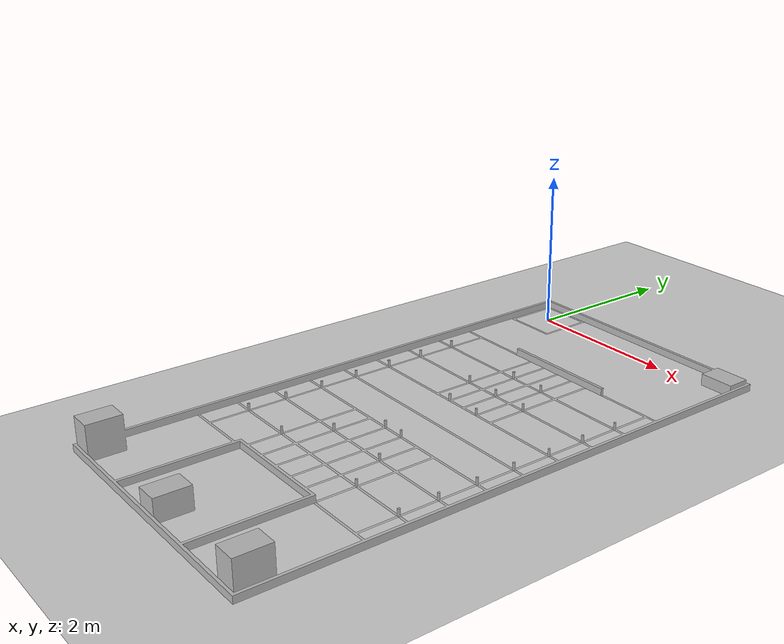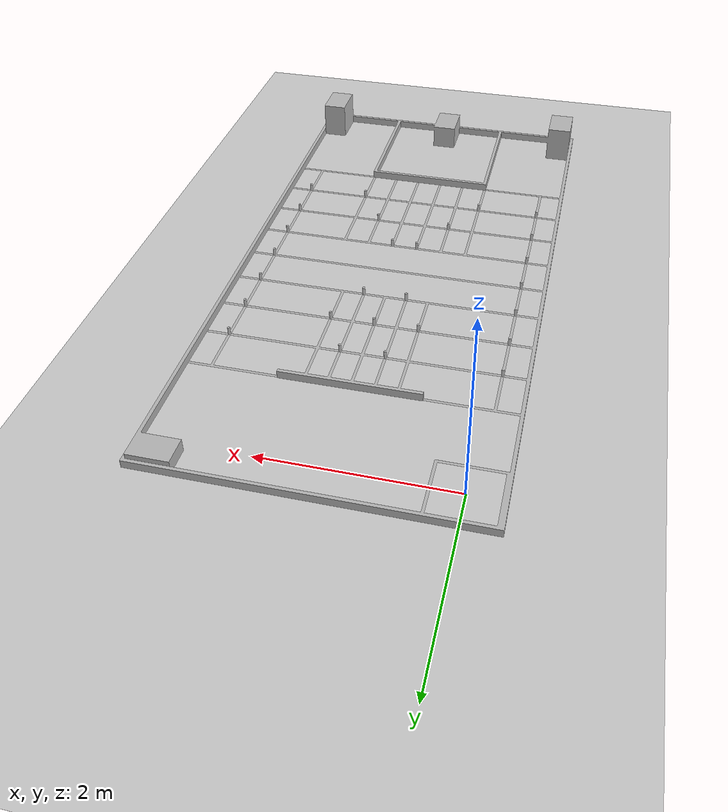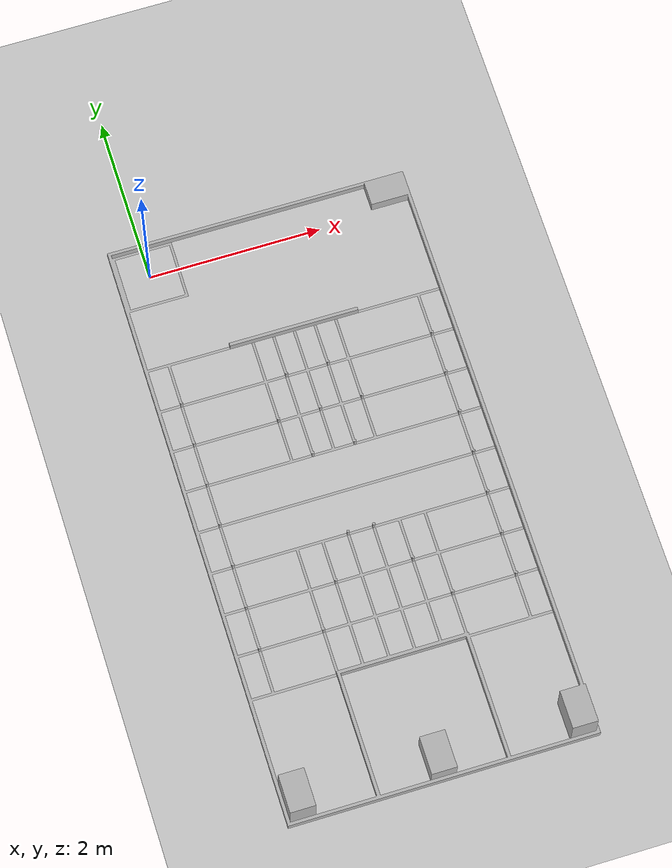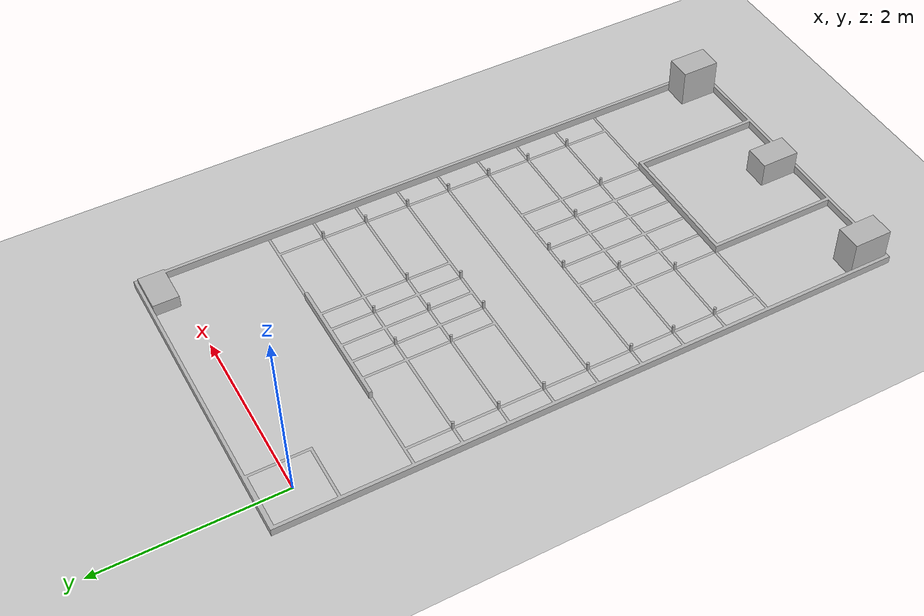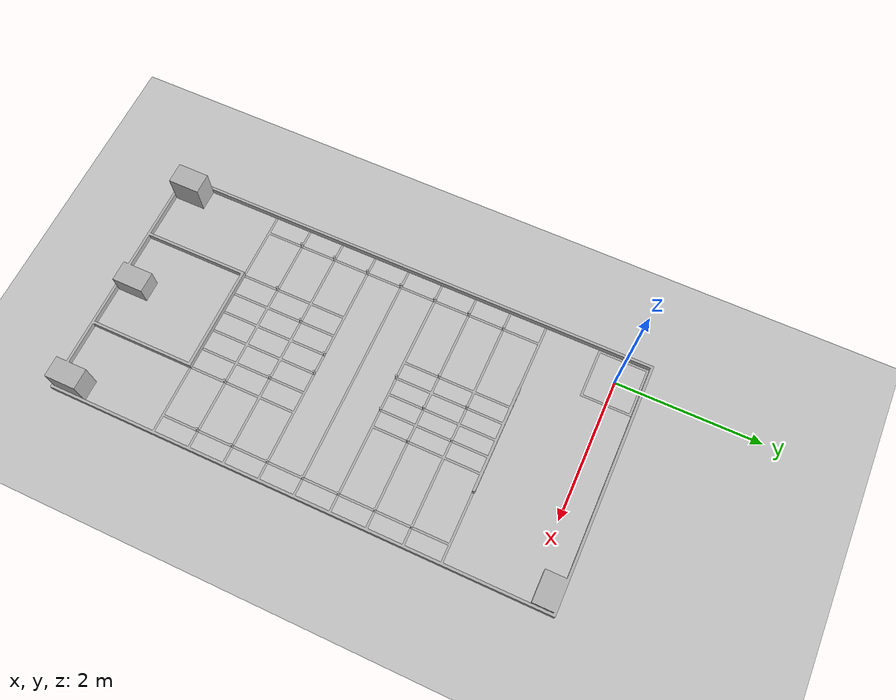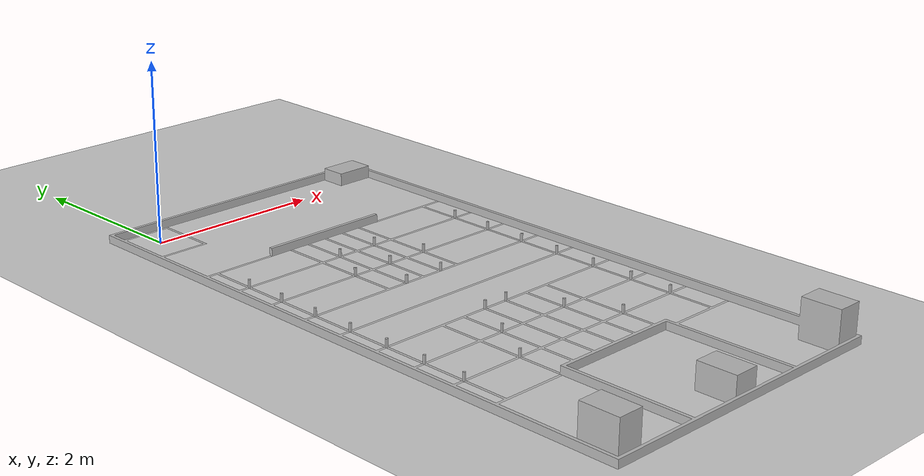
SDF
<?xml version="1.0"?>
<sdf version='1.6'>
  <world name="default">
    <include>
      <uri>model://ground_plane</uri>
    </include>
    <include>
      <uri>model://sun</uri>
    </include>
    <model name="my_mesh">
      <pose>0 0 0  0 0 0</pose>
      <static>true</static>
      <link name="body">
        <collision name="collision">
          <geometry>
            <mesh><uri>file://field_Blue_obj.stl</uri></mesh>
          </geometry>
        </collision>
        <visual name="visual">
          <geometry>
            <mesh><uri>file://field_Blue_obj.stl</uri></mesh>
          </geometry>
        </visual>
      </link>
    </model>
  </world>
</sdf>
